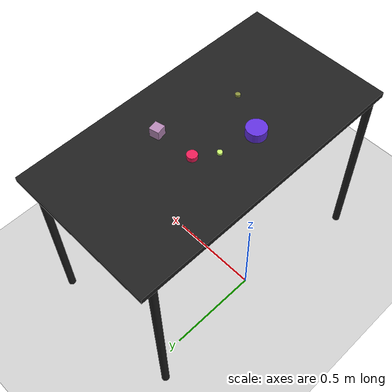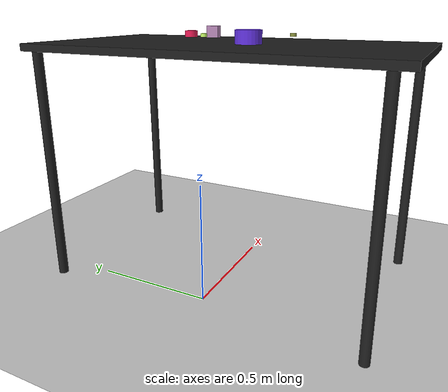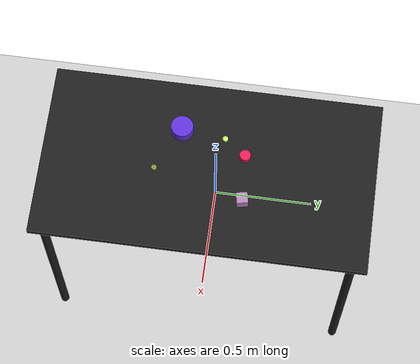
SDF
<?xml version="1.0" ?>
<sdf version="1.6">
  <world name="arm_world">
    <plugin filename="gz-sim-physics-system" name="gz::sim::systems::Physics">
      <engine>
        <filename>libgz-physics-bullet-featherstone-plugin.so</filename>
      </engine>
    </plugin>
    <plugin filename="gz-sim-user-commands-system" name="gz::sim::systems::UserCommands"/>
    <plugin filename="gz-sim-scene-broadcaster-system" name="gz::sim::systems::SceneBroadcaster"/>
    <plugin filename="gz-sim-sensors-system" name="gz::sim::systems::Sensors">
      <render_engine>ogre2</render_engine>
    </plugin>
    <gravity>0.0 0.0 -9.8</gravity>
    <scene>
      <shadows>false</shadows>
    </scene>
    <gui>
      <camera name="user_camera">
        <pose>0.75 -0.75 1.4 0 0.29 2.21</pose>
      </camera>
    </gui>
    <include>
      <uri>https://fuel.gazebosim.org/1.0/OpenRobotics/models/Sun</uri>
    </include>
    <model name="table">
      <static>true</static>
      <include>
        <uri>model://table</uri>
      </include>
      <pose>0.29 0 0 0 0 1.5708</pose>
    </model>
    <model name="ground_plane">
      <static>true</static>
      <link name="link">
        <collision name="collision">
          <geometry>
            <plane>
              <normal>0 0 1</normal>
            </plane>
          </geometry>
          <surface>
            <friction>
              <ode>
                <mu>1.0</mu>
                <mu2>1.0</mu2>
              </ode>
            </friction>
          </surface>
        </collision>
        <visual name="visual">
          <geometry>
            <plane>
              <normal>0 0 1</normal>
              <size>100 100</size>
            </plane>
          </geometry>
          <material>
            <ambient>0.8 0.8 0.8 1</ambient>
            <diffuse>0.8 0.8 0.8 1</diffuse>
            <specular>0.8 0.8 0.8 1</specular>
          </material>
        </visual>
      </link>
    </model>
    <model name="cube_m_0">
      <pose>0.435 0.17 1.05 0 0 0.21</pose>
      <link name="cube_m_0_link">
        <inertial>
          <mass>0.05</mass>
          <inertia>
            <ixx>2.04e-7</ixx>
            <iyy>2.04e-7</iyy>
            <izz>3.9e-8</izz>
            <ixy>0</ixy>
            <ixz>0</ixz>
            <iyz>0</iyz>
          </inertia>
        </inertial>
        <collision name="cube_m_0_collision">
          <geometry>
            <box>
              <size>0.05 0.05 0.05</size>
            </box>
          </geometry>
          <surface>
            <friction>
              <ode>
                <mu>0.8</mu>
                <mu2>0.8</mu2>
                <fdir1>0 0 1</fdir1>
                <slip1>0.001</slip1>
                <slip2>0.001</slip2>
              </ode>
              <torsional>
                <coefficient>0.1</coefficient>
                <surface_radius>0.015</surface_radius>
                <use_patch_radius>true</use_patch_radius>
              </torsional>
            </friction>
            <contact>
              <ode>
                <kp>1e5</kp>
                <kd>10</kd>
                <max_vel>0.1</max_vel>
                <min_depth>0.001</min_depth>
                <soft_cfm>0.01</soft_cfm>
                <soft_erp>0.2</soft_erp>
              </ode>
            </contact>
            <bounce>
              <restitution_coefficient>0.2</restitution_coefficient>
              <threshold>0.01</threshold>
            </bounce>
          </surface>
        </collision>
        <visual name="cube_m_0_visual">
          <geometry>
            <box>
              <size>0.05 0.05 0.05</size>
            </box>
          </geometry>
          <material>
            <ambient>0.71 0.53 0.71 1</ambient>
            <diffuse>0.71 0.53 0.71 1</diffuse>
          </material>
        </visual>
        <velocity_decay>
          <linear>1</linear>
          <angular>1</angular>
        </velocity_decay>
      </link>
    </model>
    <model name="cylinder_m_1">
      <pose>0.227 0.159 1.05 0 0 2.33</pose>
      <link name="cylinder_m_1_link">
        <inertial>
          <mass>0.05</mass>
          <inertia>
            <ixx>2.04e-7</ixx>
            <iyy>2.04e-7</iyy>
            <izz>3.9e-8</izz>
            <ixy>0</ixy>
            <ixz>0</ixz>
            <iyz>0</iyz>
          </inertia>
        </inertial>
        <collision name="cylinder_m_1_collision">
          <geometry>
            <cylinder>
              <radius>0.025</radius>
              <length>0.025</length>
            </cylinder>
          </geometry>
          <surface>
            <friction>
              <ode>
                <mu>0.8</mu>
                <mu2>0.8</mu2>
                <fdir1>0 0 1</fdir1>
                <slip1>0.001</slip1>
                <slip2>0.001</slip2>
              </ode>
              <torsional>
                <coefficient>0.1</coefficient>
                <surface_radius>0.015</surface_radius>
                <use_patch_radius>true</use_patch_radius>
              </torsional>
            </friction>
            <contact>
              <ode>
                <kp>1e5</kp>
                <kd>10</kd>
                <max_vel>0.1</max_vel>
                <min_depth>0.001</min_depth>
                <soft_cfm>0.01</soft_cfm>
                <soft_erp>0.2</soft_erp>
              </ode>
            </contact>
            <bounce>
              <restitution_coefficient>0.2</restitution_coefficient>
              <threshold>0.01</threshold>
            </bounce>
          </surface>
        </collision>
        <visual name="cylinder_m_1_visual">
          <geometry>
            <cylinder>
              <radius>0.025</radius>
              <length>0.025</length>
            </cylinder>
          </geometry>
          <material>
            <ambient>0.92 0.11 0.34 1</ambient>
            <diffuse>0.92 0.11 0.34 1</diffuse>
          </material>
        </visual>
        <velocity_decay>
          <linear>1</linear>
          <angular>1</angular>
        </velocity_decay>
      </link>
    </model>
    <model name="cylinder_s_2">
      <pose>0.335 -0.235 1.05 0 0 0.78</pose>
      <link name="cylinder_s_2_link">
        <inertial>
          <mass>0.05</mass>
          <inertia>
            <ixx>2.04e-7</ixx>
            <iyy>2.04e-7</iyy>
            <izz>3.9e-8</izz>
            <ixy>0</ixy>
            <ixz>0</ixz>
            <iyz>0</iyz>
          </inertia>
        </inertial>
        <collision name="cylinder_s_2_collision">
          <geometry>
            <cylinder>
              <radius>0.0125</radius>
              <length>0.0125</length>
            </cylinder>
          </geometry>
          <surface>
            <friction>
              <ode>
                <mu>0.8</mu>
                <mu2>0.8</mu2>
                <fdir1>0 0 1</fdir1>
                <slip1>0.001</slip1>
                <slip2>0.001</slip2>
              </ode>
              <torsional>
                <coefficient>0.1</coefficient>
                <surface_radius>0.015</surface_radius>
                <use_patch_radius>true</use_patch_radius>
              </torsional>
            </friction>
            <contact>
              <ode>
                <kp>1e5</kp>
                <kd>10</kd>
                <max_vel>0.1</max_vel>
                <min_depth>0.001</min_depth>
                <soft_cfm>0.01</soft_cfm>
                <soft_erp>0.2</soft_erp>
              </ode>
            </contact>
            <bounce>
              <restitution_coefficient>0.2</restitution_coefficient>
              <threshold>0.01</threshold>
            </bounce>
          </surface>
        </collision>
        <visual name="cylinder_s_2_visual">
          <geometry>
            <cylinder>
              <radius>0.0125</radius>
              <length>0.0125</length>
            </cylinder>
          </geometry>
          <material>
            <ambient>0.53 0.56 0.24 1</ambient>
            <diffuse>0.53 0.56 0.24 1</diffuse>
          </material>
        </visual>
        <velocity_decay>
          <linear>1</linear>
          <angular>1</angular>
        </velocity_decay>
      </link>
    </model>
    <model name="cylinder_l_3">
      <pose>0.13 -0.137 1.05 0 0 3.53</pose>
      <link name="cylinder_l_3_link">
        <inertial>
          <mass>0.05</mass>
          <inertia>
            <ixx>2.04e-7</ixx>
            <iyy>2.04e-7</iyy>
            <izz>3.9e-8</izz>
            <ixy>0</ixy>
            <ixz>0</ixz>
            <iyz>0</iyz>
          </inertia>
        </inertial>
        <collision name="cylinder_l_3_collision">
          <geometry>
            <cylinder>
              <radius>0.05</radius>
              <length>0.05</length>
            </cylinder>
          </geometry>
          <surface>
            <friction>
              <ode>
                <mu>0.8</mu>
                <mu2>0.8</mu2>
                <fdir1>0 0 1</fdir1>
                <slip1>0.001</slip1>
                <slip2>0.001</slip2>
              </ode>
              <torsional>
                <coefficient>0.1</coefficient>
                <surface_radius>0.015</surface_radius>
                <use_patch_radius>true</use_patch_radius>
              </torsional>
            </friction>
            <contact>
              <ode>
                <kp>1e5</kp>
                <kd>10</kd>
                <max_vel>0.1</max_vel>
                <min_depth>0.001</min_depth>
                <soft_cfm>0.01</soft_cfm>
                <soft_erp>0.2</soft_erp>
              </ode>
            </contact>
            <bounce>
              <restitution_coefficient>0.2</restitution_coefficient>
              <threshold>0.01</threshold>
            </bounce>
          </surface>
        </collision>
        <visual name="cylinder_l_3_visual">
          <geometry>
            <cylinder>
              <radius>0.05</radius>
              <length>0.05</length>
            </cylinder>
          </geometry>
          <material>
            <ambient>0.38 0.19 0.87 1</ambient>
            <diffuse>0.38 0.19 0.87 1</diffuse>
          </material>
        </visual>
        <velocity_decay>
          <linear>1</linear>
          <angular>1</angular>
        </velocity_decay>
      </link>
    </model>
    <model name="cylinder_s_4">
      <pose>0.157 0.062 1.05 0 0 4.0</pose>
      <link name="cylinder_s_4_link">
        <inertial>
          <mass>0.05</mass>
          <inertia>
            <ixx>2.04e-7</ixx>
            <iyy>2.04e-7</iyy>
            <izz>3.9e-8</izz>
            <ixy>0</ixy>
            <ixz>0</ixz>
            <iyz>0</iyz>
          </inertia>
        </inertial>
        <collision name="cylinder_s_4_collision">
          <geometry>
            <cylinder>
              <radius>0.0125</radius>
              <length>0.0125</length>
            </cylinder>
          </geometry>
          <surface>
            <friction>
              <ode>
                <mu>0.8</mu>
                <mu2>0.8</mu2>
                <fdir1>0 0 1</fdir1>
                <slip1>0.001</slip1>
                <slip2>0.001</slip2>
              </ode>
              <torsional>
                <coefficient>0.1</coefficient>
                <surface_radius>0.015</surface_radius>
                <use_patch_radius>true</use_patch_radius>
              </torsional>
            </friction>
            <contact>
              <ode>
                <kp>1e5</kp>
                <kd>10</kd>
                <max_vel>0.1</max_vel>
                <min_depth>0.001</min_depth>
                <soft_cfm>0.01</soft_cfm>
                <soft_erp>0.2</soft_erp>
              </ode>
            </contact>
            <bounce>
              <restitution_coefficient>0.2</restitution_coefficient>
              <threshold>0.01</threshold>
            </bounce>
          </surface>
        </collision>
        <visual name="cylinder_s_4_visual">
          <geometry>
            <cylinder>
              <radius>0.0125</radius>
              <length>0.0125</length>
            </cylinder>
          </geometry>
          <material>
            <ambient>0.79 0.99 0.42 1</ambient>
            <diffuse>0.79 0.99 0.42 1</diffuse>
          </material>
        </visual>
        <velocity_decay>
          <linear>1</linear>
          <angular>1</angular>
        </velocity_decay>
      </link>
    </model>
  </world>
</sdf>

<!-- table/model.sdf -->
<sdf version="1.5">
  <model name="table">
    <static>true</static>
    <link name="link">
      <collision name="surface">
        <pose>0 0 1.0 0 0 0</pose>
        <geometry>
          <box>
            <size>1.5 0.8 0.03</size>
          </box>
        </geometry>
        <surface>
          <friction>
            <ode>
              <mu>0.6</mu>
              <mu2>0.6</mu2>
            </ode>
          </friction>
        </surface>
      </collision>
      <visual name="surface">
        <pose>0 0 1.0 0 0 0</pose>
        <geometry>
          <box>
            <size>1.5 0.8 0.03</size>
          </box>
        </geometry>
        <material>
          <script>
            <uri>file://media/materials/scripts/gazebo.material</uri>
            <name>Gazebo/Black</name>
          </script>
        </material>
      </visual>
      <collision name="front_left_leg">
        <pose>0.68 0.38 0.5 0 0 0</pose>
        <geometry>
          <cylinder>
            <radius>0.02</radius>
            <length>1.0</length>
          </cylinder>
        </geometry>
      </collision>
      <visual name="front_left_leg">
        <pose>0.68 0.38 0.5 0 0 0</pose>
        <geometry>
          <cylinder>
            <radius>0.02</radius>
            <length>1.0</length>
          </cylinder>
        </geometry>
        <material>
          <script>
            <uri>file://media/materials/scripts/gazebo.material</uri>
            <name>Gazebo/Black</name>
          </script>
        </material>
      </visual>
      <collision name="front_right_leg">
        <pose>0.68 -0.38 0.5 0 0 0</pose>
        <geometry>
          <cylinder>
            <radius>0.02</radius>
            <length>1.0</length>
          </cylinder>
        </geometry>
      </collision>
      <visual name="front_right_leg">
        <pose>0.68 -0.38 0.5 0 0 0</pose>
        <geometry>
          <cylinder>
            <radius>0.02</radius>
            <length>1.0</length>
          </cylinder>
        </geometry>
        <material>
          <script>
            <uri>file://media/materials/scripts/gazebo.material</uri>
            <name>Gazebo/Black</name>
          </script>
        </material>
      </visual>
      <collision name="back_right_leg">
        <pose>-0.68 -0.38 0.5 0 0 0</pose>
        <geometry>
          <cylinder>
            <radius>0.02</radius>
            <length>1.0</length>
          </cylinder>
        </geometry>
      </collision>
      <visual name="back_right_leg">
        <pose>-0.68 -0.38 0.5 0 0 0</pose>
        <geometry>
          <cylinder>
            <radius>0.02</radius>
            <length>1.0</length>
          </cylinder>
        </geometry>
        <material>
          <script>
            <uri>file://media/materials/scripts/gazebo.material</uri>
            <name>Gazebo/Black</name>
          </script>
        </material>
      </visual>
      <collision name="back_left_leg">
        <pose>-0.68 0.38 0.5 0 0 0</pose>
        <geometry>
          <cylinder>
            <radius>0.02</radius>
            <length>1.0</length>
          </cylinder>
        </geometry>
      </collision>
      <visual name="back_left_leg">
        <pose>-0.68 0.38 0.5 0 0 0</pose>
        <geometry>
          <cylinder>
            <radius>0.02</radius>
            <length>1.0</length>
          </cylinder>
        </geometry>
        <material>
          <script>
            <uri>file://media/materials/scripts/gazebo.material</uri>
            <name>Gazebo/Black</name>
          </script>
        </material>
      </visual>
    </link>
  </model>
</sdf>
